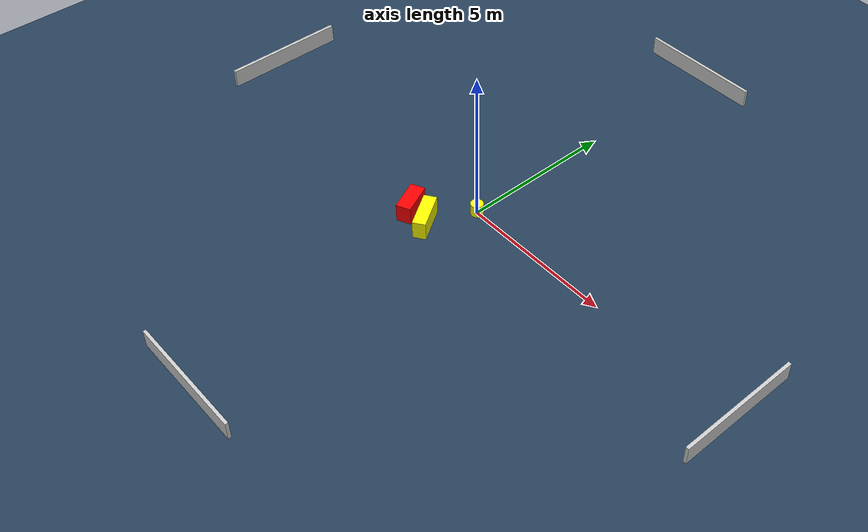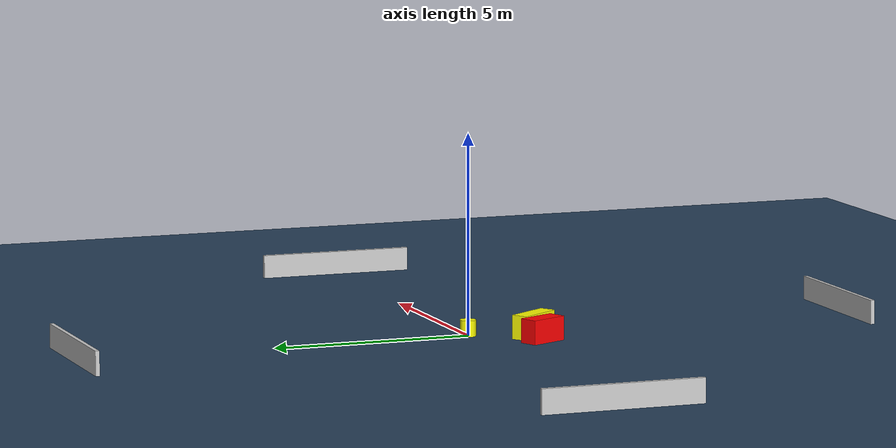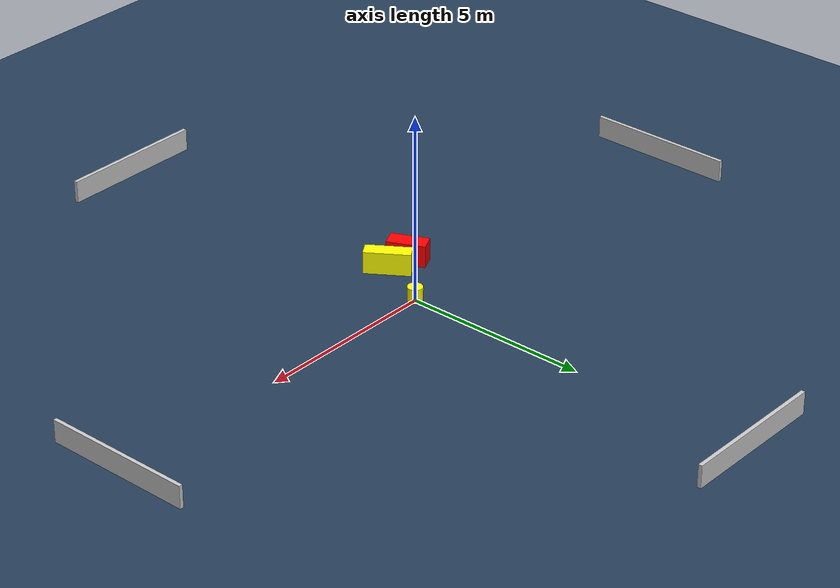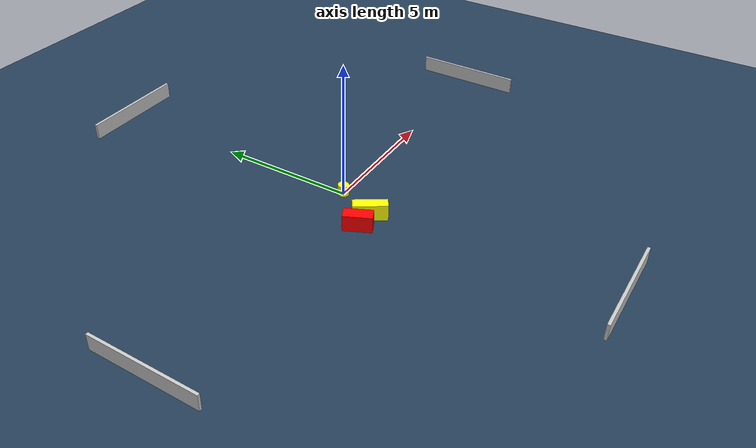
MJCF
<?xml version="1.0" ?>
<mujoco model="generated_environment">
  <option timestep="0.01" integrator="RK4" cone="elliptic"/>
  <default>
    <geom density="1"/>
  </default>
  <asset>
    <texture builtin="gradient" height="3072" name="skybox" rgb1="0.3 0.5 0.7" rgb2="0 0 0" type="skybox" width="512"/>
    <texture builtin="checker" height="300" name="groundplane" rgb1="0.2 0.3 0.4" rgb2="0.1 0.2 0.3" type="2d" width="300"/>
    <material name="groundplane" reflectance="0.2" texrepeat="5 5" texture="groundplane"/>
  </asset>
  <worldbody>
    <light dir="0 0 -1" directional="true" pos="0 0 1.5"/>
    <geom condim="3" friction="0.5 0.005 0.001" material="groundplane" name="floor" pos="0 0 0" size="0 0 0.05" type="plane"/>
    <body name="walls">
      <geom name="wall_1" condim="4" pos="-10.0 0.0 0.3" rgba="0.800000011920929 0.800000011920929 0.800000011920929 1.0" size="0.05 2.0 0.3" type="box"/>
      <geom name="wall_2" condim="4" pos="10.0 0.0 0.3" rgba="0.800000011920929 0.800000011920929 0.800000011920929 1.0" size="0.05 2.0 0.3" type="box"/>
      <geom name="wall_3" condim="4" pos="0.0 -10.0 0.3" rgba="0.800000011920929 0.800000011920929 0.800000011920929 1.0" size="2.0 0.05 0.3" type="box"/>
      <geom name="wall_4" condim="4" pos="0.0 10.0 0.3" rgba="0.800000011920929 0.800000011920929 0.800000011920929 1.0" size="2.0 0.05 0.3" type="box"/>
    </body>
    <body name="robot">
      <joint name="joint_x" type="slide" pos="0 0 0" axis="1 0 0"/>
      <joint name="joint_y" type="slide" pos="0 0 0" axis="0 1 0"/>
      <geom name="robot" type="cylinder" pos="0.0 0.0 0.2" size="0.2 0.2 0.0" mass="5.0" friction="1.0 0.005 0.0001" condim="4" rgba="1.0 1.0 0.0 1.0"/>
    </body>
    <body name="obstacle_1_movable">
      <geom name="obstacle_1_movable" condim="4" pos="-0.6553881808623209 -1.4723447096009696 0.3" euler="0 0 33.897500357850795" friction="0.0 0.005 0.001" rgba="1.0 1.0 0.0 1.0" size="0.20626482736390161 0.6084880405753745 0.3" type="box" mass="0.1"/>
      <joint type="free"/>
    </body>
    <body name="obstacle_2_static">
      <geom name="obstacle_2_static" condim="4" pos="-1.364903824262005 -1.4298621762218249 0.3" euler="0 0 205.19004468054902" friction="0.0 0.005 0.001" rgba="1.0 0.0 0.0 1.0" size="0.23460676961730315 0.5131281248321977 0.3" type="box"/>
    </body>
  </worldbody>
  <actuator>
    <motor name="actuator_x" joint="joint_x" gear="1" ctrlrange="-1 1"/>
    <motor name="actuator_y" joint="joint_y" gear="1" ctrlrange="-1 1"/>
  </actuator>
</mujoco>
